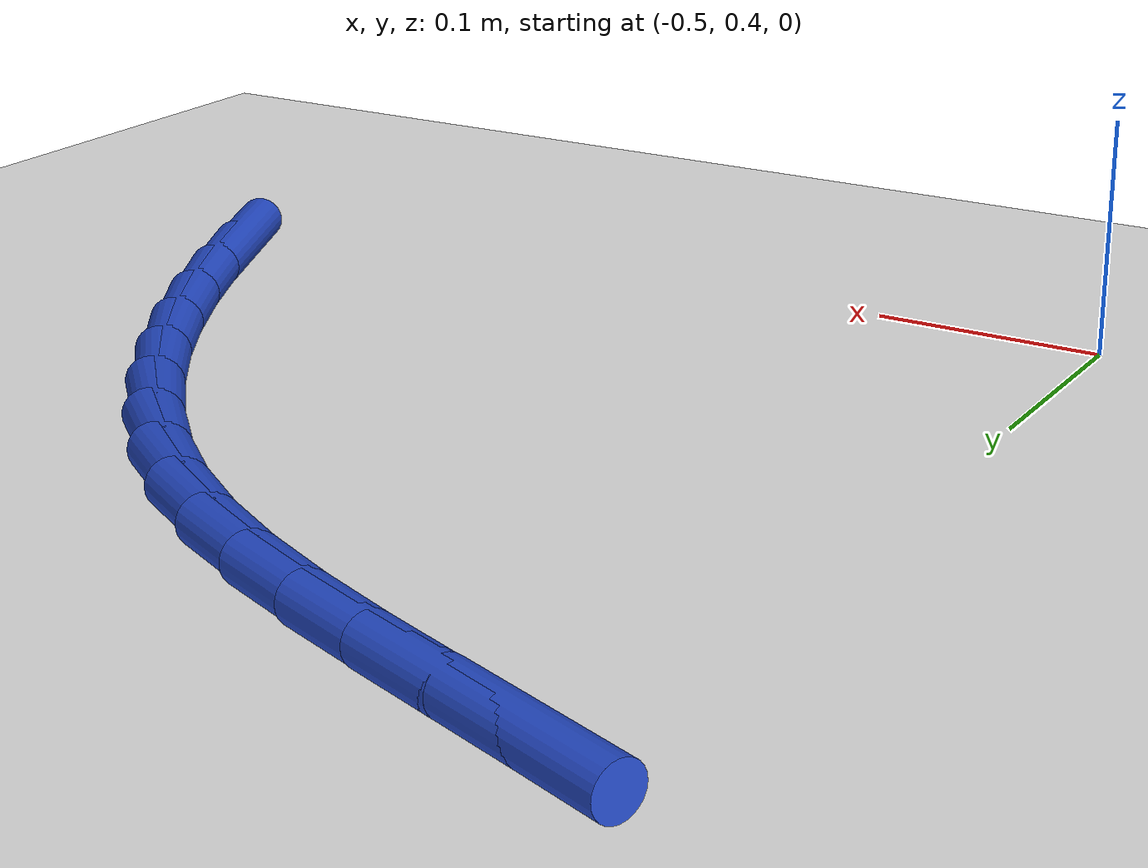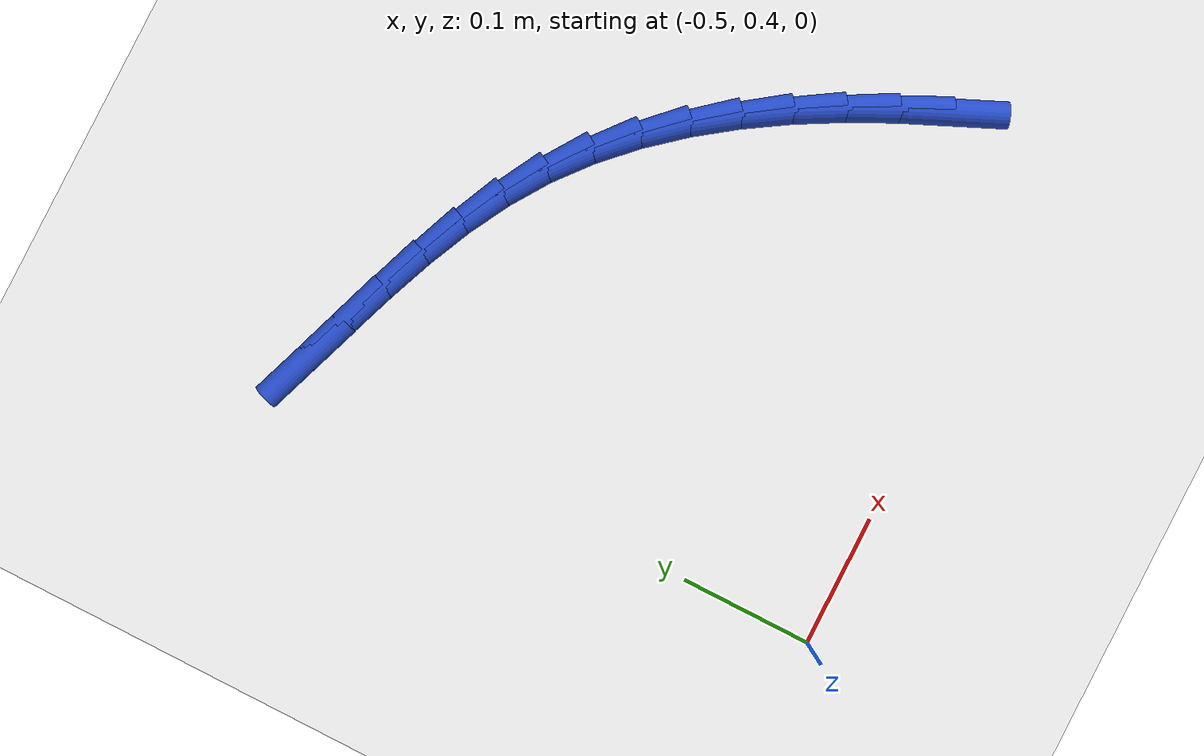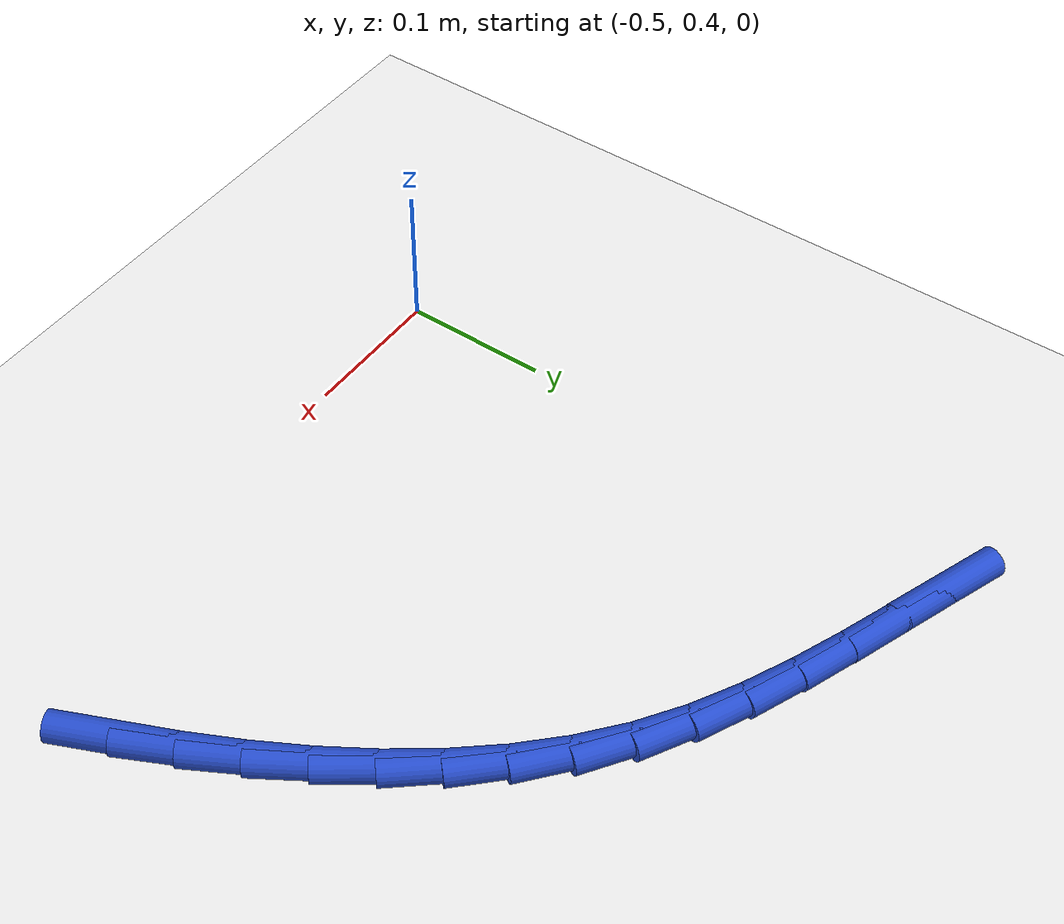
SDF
<sdf version="1.6">
 <world name="default">
  <model name="ground_plane">
   <static>1</static>
   <link name="link">
    <collision name="collision">
     <geometry><plane><normal>0 0 1</normal><size>100 100</size></plane></geometry>
     <surface><friction><ode><mu>100</mu><mu2>50</mu2></ode></friction></surface>
    </collision>
    <visual name="visual">
     <cast_shadows>0</cast_shadows>
     <geometry><plane><normal>0 0 1</normal><size>100 100</size></plane></geometry>
     <material>
      <script><uri>file://media/materials/scripts/gazebo.material</uri><name>Gazebo/WhiteGlow</name></script>
     </material>
    </visual>
   </link>
  </model>
  <model name="line">
   <link name="link_13">
    <pose>-0.11017075329953971 0.4816562937454951 0.01 0 1.57 -1.1525835578874646</pose>
    <collision name="collision">
     <geometry><cylinder><radius>0.01</radius><length>0.08</length></cylinder></geometry>
    </collision>
    <visual name="visual">
     <material>
      <script><name>Gazebo/Blue</name><uri>file://media/materials/scripts/gazebo.material</uri></script>
     </material>
     <geometry><cylinder><radius>0.01</radius><length>0.08</length></cylinder></geometry>
    </visual>
   </link>
   <link name="link_14">
    <pose>-0.1261859269389661 0.5176915569120346 0.01 0 1.57 -1.1101885092594088</pose>
    <collision name="collision">
     <geometry><cylinder><radius>0.01</radius><length>0.08</length></cylinder></geometry>
    </collision>
    <visual name="visual">
     <material>
      <script><name>Gazebo/Blue</name><uri>file://media/materials/scripts/gazebo.material</uri></script>
     </material>
     <geometry><cylinder><radius>0.01</radius><length>0.08</length></cylinder></geometry>
    </visual>
   </link>
   <link name="link_15">
    <pose>-0.14354797130188227 0.55268114555578 0.01 0 1.57 -1.0611563104371302</pose>
    <collision name="collision">
     <geometry><cylinder><radius>0.01</radius><length>0.08</length></cylinder></geometry>
    </collision>
    <visual name="visual">
     <material>
      <script><name>Gazebo/Blue</name><uri>file://media/materials/scripts/gazebo.material</uri></script>
     </material>
     <geometry><cylinder><radius>0.01</radius><length>0.08</length></cylinder></geometry>
    </visual>
   </link>
   <link name="link_16">
    <pose>-0.1623638508294796 0.5863478915001425 0.01 0 1.57 -1.0047205085807145</pose>
    <collision name="collision">
     <geometry><cylinder><radius>0.01</radius><length>0.08</length></cylinder></geometry>
    </collision>
    <visual name="visual">
     <material>
      <script><name>Gazebo/Blue</name><uri>file://media/materials/scripts/gazebo.material</uri></script>
     </material>
     <geometry><cylinder><radius>0.01</radius><length>0.08</length></cylinder></geometry>
    </visual>
   </link>
   <link name="link_17">
    <pose>-0.18274052996294976 0.6184146265685346 0.01 0 1.57 -0.9400874756557059</pose>
    <collision name="collision">
     <geometry><cylinder><radius>0.01</radius><length>0.08</length></cylinder></geometry>
    </collision>
    <visual name="visual">
     <material>
      <script><name>Gazebo/Blue</name><uri>file://media/materials/scripts/gazebo.material</uri></script>
     </material>
     <geometry><cylinder><radius>0.01</radius><length>0.08</length></cylinder></geometry>
    </visual>
   </link>
   <link name="link_18">
    <pose>-0.2047849731434842 0.6486041825843674 0.01 0 1.57 -0.8665250352226699</pose>
    <collision name="collision">
     <geometry><cylinder><radius>0.01</radius><length>0.08</length></cylinder></geometry>
    </collision>
    <visual name="visual">
     <material>
      <script><name>Gazebo/Blue</name><uri>file://media/materials/scripts/gazebo.material</uri></script>
     </material>
     <geometry><cylinder><radius>0.01</radius><length>0.08</length></cylinder></geometry>
    </visual>
   </link>
   <link name="link_19">
    <pose>-0.22860414481227453 0.6766393913710528 0.01 0 1.57 -0.7835041581682417</pose>
    <collision name="collision">
     <geometry><cylinder><radius>0.01</radius><length>0.08</length></cylinder></geometry>
    </collision>
    <visual name="visual">
     <material>
      <script><name>Gazebo/Blue</name><uri>file://media/materials/scripts/gazebo.material</uri></script>
     </material>
     <geometry><cylinder><radius>0.01</radius><length>0.08</length></cylinder></geometry>
    </visual>
   </link>
   <link name="link_20">
    <pose>-0.2543050094105123 0.7022430847520031 0.01 0 1.57 -0.6908982940790531</pose>
    <collision name="collision">
     <geometry><cylinder><radius>0.01</radius><length>0.08</length></cylinder></geometry>
    </collision>
    <visual name="visual">
     <material>
      <script><name>Gazebo/Blue</name><uri>file://media/materials/scripts/gazebo.material</uri></script>
     </material>
     <geometry><cylinder><radius>0.01</radius><length>0.08</length></cylinder></geometry>
    </visual>
   </link>
   <link name="link_21">
    <pose>-0.2819945313793889 0.7251380945506293 0.01 0 1.57 -0.5905024079407324</pose>
    <collision name="collision">
     <geometry><cylinder><radius>0.01</radius><length>0.08</length></cylinder></geometry>
    </collision>
    <visual name="visual">
     <material>
      <script><name>Gazebo/Blue</name><uri>file://media/materials/scripts/gazebo.material</uri></script>
     </material>
     <geometry><cylinder><radius>0.01</radius><length>0.08</length></cylinder></geometry>
    </visual>
   </link>
   <link name="link_22">
    <pose>-0.3117585735056314 0.7450884417860737 0.01 0 1.57 -0.49927831312667775</pose>
    <collision name="collision">
     <geometry><cylinder><radius>0.01</radius><length>0.08</length></cylinder></geometry>
    </collision>
    <visual name="visual">
     <material>
      <script><name>Gazebo/Blue</name><uri>file://media/materials/scripts/gazebo.material</uri></script>
     </material>
     <geometry><cylinder><radius>0.01</radius><length>0.08</length></cylinder></geometry>
    </visual>
   </link>
   <link name="link_23">
    <pose>-0.3434264088022716 0.7623589957132814 0.01 0 1.57 -0.42874688198876476</pose>
    <collision name="collision">
     <geometry><cylinder><radius>0.01</radius><length>0.08</length></cylinder></geometry>
    </collision>
    <visual name="visual">
     <material>
      <script><name>Gazebo/Blue</name><uri>file://media/materials/scripts/gazebo.material</uri></script>
     </material>
     <geometry><cylinder><radius>0.01</radius><length>0.08</length></cylinder></geometry>
    </visual>
   </link>
   <link name="link_24">
    <pose>-0.37665624843168866 0.7775485283179215 0.01 0 1.57 -0.37886797641526837</pose>
    <collision name="collision">
     <geometry><cylinder><radius>0.01</radius><length>0.08</length></cylinder></geometry>
    </collision>
    <visual name="visual">
     <material>
      <script><name>Gazebo/Blue</name><uri>file://media/materials/scripts/gazebo.material</uri></script>
     </material>
     <geometry><cylinder><radius>0.01</radius><length>0.08</length></cylinder></geometry>
    </visual>
   </link>
   <link name="link_25">
    <pose>-0.411103193939364 0.7912618813760336 0.01 0 1.57 -0.3487381682582309</pose>
    <collision name="collision">
     <geometry><cylinder><radius>0.01</radius><length>0.08</length></cylinder></geometry>
    </collision>
    <visual name="visual">
     <material>
      <script><name>Gazebo/Blue</name><uri>file://media/materials/scripts/gazebo.material</uri></script>
     </material>
     <geometry><cylinder><radius>0.01</radius><length>0.08</length></cylinder></geometry>
    </visual>
   </link>
   <link name="link_26">
    <pose>-0.4464223468707784 0.8041038966636568 0.01 0 1.57 -0.33740175488924795</pose>
    <collision name="collision">
     <geometry><cylinder><radius>0.01</radius><length>0.08</length></cylinder></geometry>
    </collision>
    <visual name="visual">
     <material>
      <script><name>Gazebo/Blue</name><uri>file://media/materials/scripts/gazebo.material</uri></script>
     </material>
     <geometry><cylinder><radius>0.01</radius><length>0.08</length></cylinder></geometry>
    </visual>
   </link>
   <link name="link_27">
    <pose>-0.482268808771413 0.8166794159568307 0.01 0 1.57 -0.3441659068617075</pose>
    <collision name="collision">
     <geometry><cylinder><radius>0.01</radius><length>0.08</length></cylinder></geometry>
    </collision>
    <visual name="visual">
     <material>
      <script><name>Gazebo/Blue</name><uri>file://media/materials/scripts/gazebo.material</uri></script>
     </material>
     <geometry><cylinder><radius>0.01</radius><length>0.08</length></cylinder></geometry>
    </visual>
   </link>
  </model>
 </world>
</sdf>
